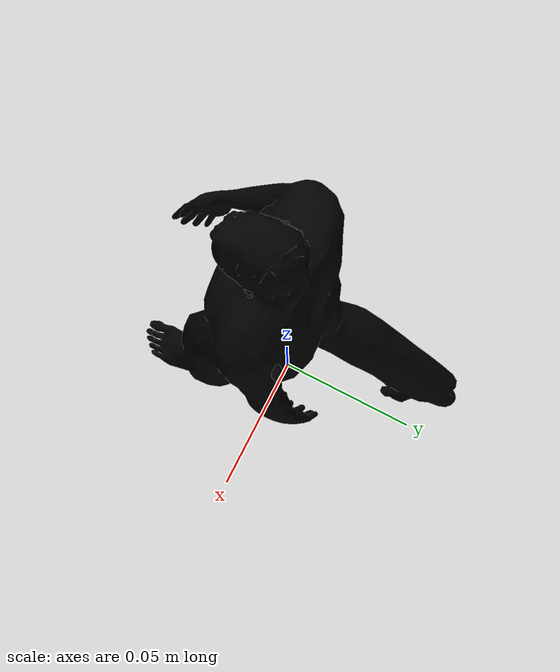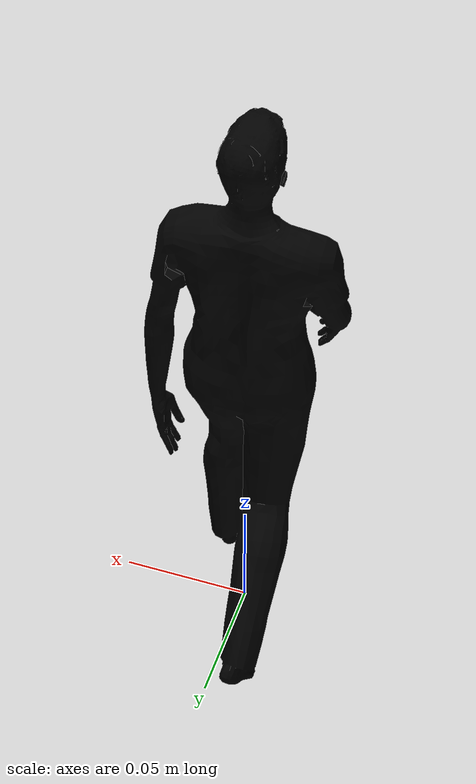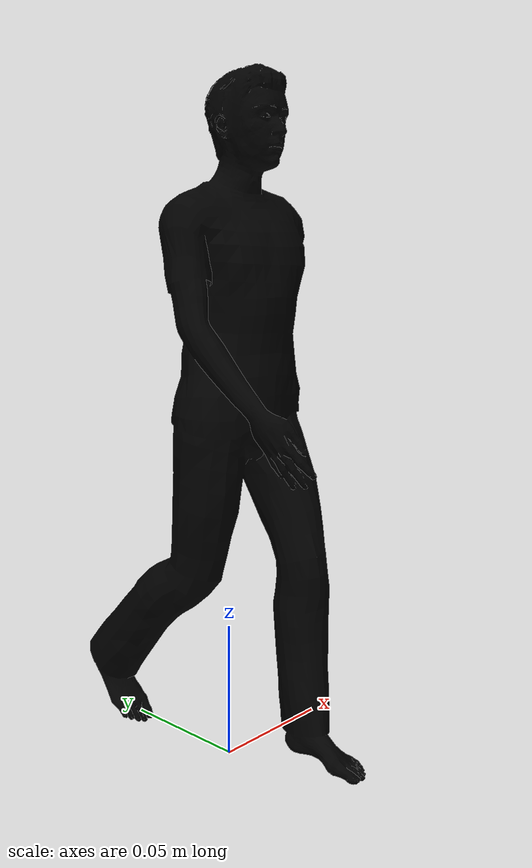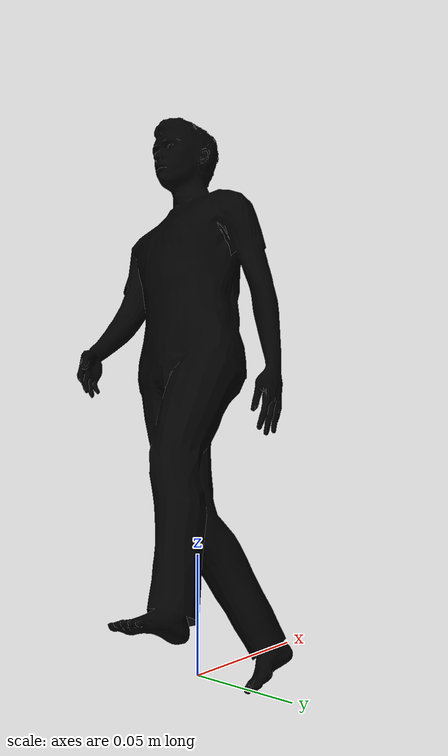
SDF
<?xml version='1.0'?>
<sdf version='1.6'>
  <model name='pedestrian3'>
    <link name='link'>
      <inertial>
        <pose frame=''>0 0 0 0 -0 0</pose>
        <mass>80</mass>
        <inertia>
          <ixx>27.82</ixx>
          <ixy>0</ixy>
          <ixz>0</ixz>
          <iyy>24.88</iyy>
          <iyz>0</iyz>
          <izz>4.57</izz>
        </inertia>
      </inertial>
      <self_collide>0</self_collide>
      <enable_wind>0</enable_wind>
      <kinematic>0</kinematic>
      <pose frame=''>0 0 0 0 -0 0</pose>
      <gravity>1</gravity>
      <visual name='visual'>
        <pose frame=''>0 0 0 0 -0 0</pose>
        <geometry>
          <mesh>
            <uri>model://person_walking/meshes/walking.dae</uri>
            <scale>0.13 0.13 0.13</scale>
          </mesh>
        </geometry>
        <transparency>0</transparency>
        <cast_shadows>1</cast_shadows>
        <material>
          <shader type='vertex'>
            <normal_map>__default__</normal_map>
          </shader>
          <script>
            <name>ModelPreview_3::link::visual_MATERIAL_</name>
            <uri>__default__</uri>
          </script>
          <ambient>0 0 0 1</ambient>
          <diffuse>0 0 0 1</diffuse>
          <specular>0 0 0 1</specular>
          <emissive>0 0 0 1</emissive>
        </material>
      </visual>
      <collision name='bottom'>
        <laser_retro>0</laser_retro>
        <max_contacts>10</max_contacts>
        <pose frame=''>0 0 0 0 -0 0</pose>
        <geometry>
          <box>
            <size>0.07 0.13 0.01</size>
          </box>
        </geometry>
        <surface>
          <friction>
            <ode>
              <mu>0</mu>
              <mu2>0</mu2>
              <fdir1>0 0 0</fdir1>
              <slip1>0</slip1>
              <slip2>0</slip2>
            </ode>
            <torsional>
              <coefficient>0</coefficient>
              <patch_radius>0</patch_radius>
              <surface_radius>0</surface_radius>
              <use_patch_radius>0</use_patch_radius>
              <ode>
                <slip>0</slip>
              </ode>
            </torsional>
          </friction>
          <bounce>
            <restitution_coefficient>0</restitution_coefficient>
            <threshold>1e+06</threshold>
          </bounce>
          <contact>
            <collide_without_contact>0</collide_without_contact>
            <collide_without_contact_bitmask>1</collide_without_contact_bitmask>
            <collide_bitmask>1</collide_bitmask>
            <ode>
              <soft_cfm>0</soft_cfm>
              <soft_erp>0.2</soft_erp>
              <kp>1e+13</kp>
              <kd>1</kd>
              <max_vel>0.01</max_vel>
              <min_depth>0</min_depth>
            </ode>
            <bullet>
              <split_impulse>1</split_impulse>
              <split_impulse_penetration_threshold>-0.01</split_impulse_penetration_threshold>
              <soft_cfm>0</soft_cfm>
              <soft_erp>0.2</soft_erp>
              <kp>1e+13</kp>
              <kd>1</kd>
            </bullet>
          </contact>
        </surface>
      </collision>
      <collision name='person'>
        <laser_retro>0</laser_retro>
        <max_contacts>10</max_contacts>
        <pose frame=''>0 0 0 0 -0 0</pose>
        <geometry>
          <mesh>
            <uri>/home/tom/.gazebo/models/person_walking/meshes/walking.dae</uri>
            <scale>0.13 0.13 0.13</scale>
          </mesh>
        </geometry>
        <surface>
          <friction>
            <ode>
              <mu>0</mu>
              <mu2>0</mu2>
              <fdir1>0 0 0</fdir1>
              <slip1>0</slip1>
              <slip2>0</slip2>
            </ode>
            <torsional>
              <coefficient>0</coefficient>
              <patch_radius>0</patch_radius>
              <surface_radius>0</surface_radius>
              <use_patch_radius>0</use_patch_radius>
              <ode>
                <slip>0</slip>
              </ode>
            </torsional>
          </friction>
          <bounce>
            <restitution_coefficient>0</restitution_coefficient>
            <threshold>1e+06</threshold>
          </bounce>
          <contact>
            <collide_without_contact>0</collide_without_contact>
            <collide_without_contact_bitmask>1</collide_without_contact_bitmask>
            <collide_bitmask>1</collide_bitmask>
            <ode>
              <soft_cfm>0</soft_cfm>
              <soft_erp>0.2</soft_erp>
              <kp>1e+13</kp>
              <kd>1</kd>
              <max_vel>0.01</max_vel>
              <min_depth>0</min_depth>
            </ode>
            <bullet>
              <split_impulse>1</split_impulse>
              <split_impulse_penetration_threshold>-0.01</split_impulse_penetration_threshold>
              <soft_cfm>0</soft_cfm>
              <soft_erp>0.2</soft_erp>
              <kp>1e+13</kp>
              <kd>1</kd>
            </bullet>
          </contact>
        </surface>
      </collision>
    </link>
    <static>0</static>
    <allow_auto_disable>1</allow_auto_disable>
  <plugin name="movepedestrian3_plugin" filename="libmovepedestrian3_plugin.so"/>
  </model>
</sdf>
